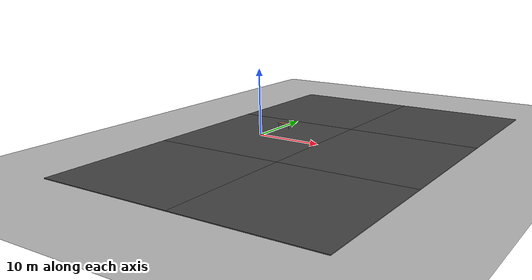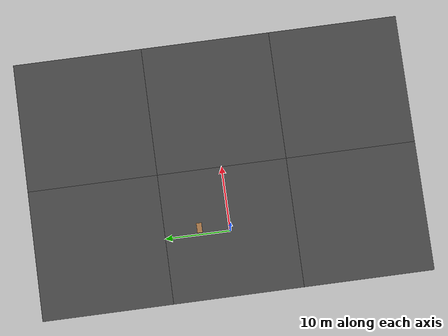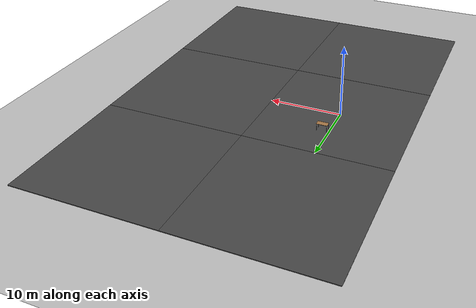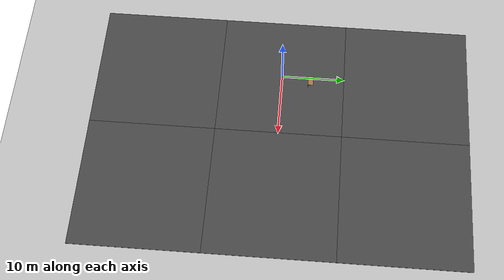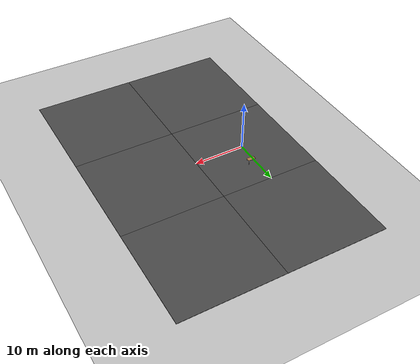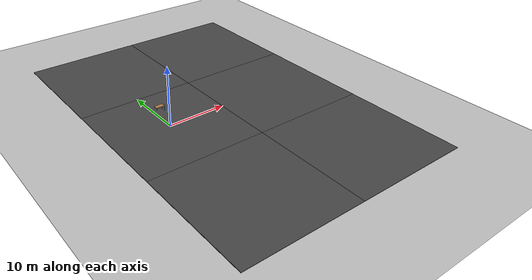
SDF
<sdf version="1.6">
 <world name="default">
  <plugin name="ros_interface_plugin" filename="librotors_gazebo_ros_interface_plugin.so"/>
  <light name="sun" type="directional">
   <pose>0 0 10 0 -0 0</pose>
   <diffuse>0.8 0.8 0.8 1</diffuse>
   <specular>0.1 0.1 0.1 1</specular>
   <attenuation>
    <range>1000</range>
    <constant>0.9</constant>
    <linear>0.01</linear>
    <quadratic>0.001</quadratic>
   </attenuation>
   <direction>-0.5 0.5 -1</direction>
  </light>
  <model name="ground_plane">
   <static>1</static>
   <link name="link">
    <collision name="collision">
     <geometry><plane><normal>0 0 1</normal><size>100 100</size></plane></geometry>
     <surface><friction><ode><mu>100</mu><mu2>50</mu2></ode></friction></surface>
    </collision>
    <visual name="visual">
     <cast_shadows>0</cast_shadows>
     <geometry><plane><normal>0 0 1</normal><size>100 100</size></plane></geometry>
     <material>
      <script><uri>file://media/materials/scripts/gazebo.material</uri><name>Gazebo/Grey</name></script>
     </material>
    </visual>
   </link>
  </model>
  <model name="asphalt_plane">
   <static>1</static>
   <link name="link">
    <collision name="collision"><geometry><box><size>20 20 0.1</size></box></geometry></collision>
    <visual name="visual">
     <cast_shadows>0</cast_shadows>
     <geometry><box><size>20 20 0.1</size></box></geometry>
     <material>
      <script>
       <uri>model://asphalt_plane/materials/scripts</uri>
       <uri>model://asphalt_plane/materials/textures</uri>
       <name>vrc/asphalt</name>
      </script>
     </material>
    </visual>
   </link>
  </model>
  <physics name="default_physics" default="0" type="ode">
   <ode>
    <solver>
     <type>quick</type>
     <iters>10</iters>
     <sor>1.3</sor>
     <use_dynamic_moi_rescaling>0</use_dynamic_moi_rescaling>
    </solver>
    <constraints>
     <cfm>0</cfm>
     <erp>0.2</erp>
     <contact_max_correcting_vel>100</contact_max_correcting_vel>
     <contact_surface_layer>0.001</contact_surface_layer>
    </constraints>
   </ode>
   <max_step_size>0.002</max_step_size>
   <real_time_factor>1</real_time_factor>
   <real_time_update_rate>500</real_time_update_rate>
  </physics>
  <gravity>0 0 0</gravity>
  <magnetic_field>6e-06 2.3e-05 -4.2e-05</magnetic_field>
  <atmosphere type="adiabatic"/>
  <scene><ambient>0.4 0.4 0.4 1</ambient><background>0.7 0.7 0.7 1</background><shadows>1</shadows></scene>
  <spherical_coordinates>
   <surface_model>EARTH_WGS84</surface_model>
   <latitude_deg>0</latitude_deg>
   <longitude_deg>0</longitude_deg>
   <elevation>0</elevation>
   <heading_deg>0</heading_deg>
  </spherical_coordinates>
  <model name="asphalt_plane_clone">
   <static>1</static>
   <link name="link">
    <collision name="collision"><geometry><box><size>20 20 0.1</size></box></geometry></collision>
    <visual name="visual">
     <cast_shadows>0</cast_shadows>
     <geometry><box><size>20 20 0.1</size></box></geometry>
     <material>
      <script>
       <uri>model://asphalt_plane/materials/scripts</uri>
       <uri>model://asphalt_plane/materials/textures</uri>
       <name>vrc/asphalt</name>
      </script>
     </material>
    </visual>
   </link>
   <pose>20 0 0 0 -0 0</pose>
  </model>
  <model name="asphalt_plane_clone_0">
   <static>1</static>
   <link name="link">
    <collision name="collision"><geometry><box><size>20 20 0.1</size></box></geometry></collision>
    <visual name="visual">
     <cast_shadows>0</cast_shadows>
     <geometry><box><size>20 20 0.1</size></box></geometry>
     <material>
      <script>
       <uri>model://asphalt_plane/materials/scripts</uri>
       <uri>model://asphalt_plane/materials/textures</uri>
       <name>vrc/asphalt</name>
      </script>
     </material>
    </visual>
   </link>
   <pose>0 20 0 0 -0 0</pose>
  </model>
  <model name="asphalt_plane_clone_1">
   <static>1</static>
   <link name="link">
    <collision name="collision"><geometry><box><size>20 20 0.1</size></box></geometry></collision>
    <visual name="visual">
     <cast_shadows>0</cast_shadows>
     <geometry><box><size>20 20 0.1</size></box></geometry>
     <material>
      <script>
       <uri>model://asphalt_plane/materials/scripts</uri>
       <uri>model://asphalt_plane/materials/textures</uri>
       <name>vrc/asphalt</name>
      </script>
     </material>
    </visual>
   </link>
   <pose>20 20 0 0 -0 0</pose>
  </model>
  <model name="asphalt_plane_clone_2">
   <static>1</static>
   <link name="link">
    <collision name="collision"><geometry><box><size>20 20 0.1</size></box></geometry></collision>
    <visual name="visual">
     <cast_shadows>0</cast_shadows>
     <geometry><box><size>20 20 0.1</size></box></geometry>
     <material>
      <script>
       <uri>model://asphalt_plane/materials/scripts</uri>
       <uri>model://asphalt_plane/materials/textures</uri>
       <name>vrc/asphalt</name>
      </script>
     </material>
    </visual>
   </link>
   <pose>0 -20 0 0 -0 0</pose>
  </model>
  <model name="asphalt_plane_clone_3">
   <static>1</static>
   <link name="link">
    <collision name="collision"><geometry><box><size>20 20 0.1</size></box></geometry></collision>
    <visual name="visual">
     <cast_shadows>0</cast_shadows>
     <geometry><box><size>20 20 0.1</size></box></geometry>
     <material>
      <script>
       <uri>model://asphalt_plane/materials/scripts</uri>
       <uri>model://asphalt_plane/materials/textures</uri>
       <name>vrc/asphalt</name>
      </script>
     </material>
    </visual>
   </link>
   <pose>20 -20 0 0 -0 0</pose>
  </model>
  <model name="table">
   <static>1</static>
   <link name="link">
    <collision name="surface">
     <pose>0 0 1 0 -0 0</pose>
     <geometry><box><size>1.5 0.8 0.03</size></box></geometry>
     <surface><friction><ode><mu>0.6</mu><mu2>0.6</mu2></ode></friction></surface>
    </collision>
    <visual name="visual1">
     <pose>0 0 1 0 -0 0</pose>
     <geometry><box><size>1.5 0.8 0.03</size></box></geometry>
     <material>
      <script><uri>file://media/materials/scripts/gazebo.material</uri><name>Gazebo/Wood</name></script>
     </material>
    </visual>
    <collision name="front_left_leg">
     <pose>0.68 0.38 0.5 0 -0 0</pose>
     <geometry><cylinder><radius>0.02</radius><length>1</length></cylinder></geometry>
    </collision>
    <visual name="front_left_leg">
     <pose>0.68 0.38 0.5 0 -0 0</pose>
     <geometry><cylinder><radius>0.02</radius><length>1</length></cylinder></geometry>
     <material>
      <script><uri>file://media/materials/scripts/gazebo.material</uri><name>Gazebo/Grey</name></script>
     </material>
    </visual>
    <collision name="front_right_leg">
     <pose>0.68 -0.38 0.5 0 -0 0</pose>
     <geometry><cylinder><radius>0.02</radius><length>1</length></cylinder></geometry>
    </collision>
    <visual name="front_right_leg">
     <pose>0.68 -0.38 0.5 0 -0 0</pose>
     <geometry><cylinder><radius>0.02</radius><length>1</length></cylinder></geometry>
     <material>
      <script><uri>file://media/materials/scripts/gazebo.material</uri><name>Gazebo/Grey</name></script>
     </material>
    </visual>
    <collision name="back_right_leg">
     <pose>-0.68 -0.38 0.5 0 -0 0</pose>
     <geometry><cylinder><radius>0.02</radius><length>1</length></cylinder></geometry>
    </collision>
    <visual name="back_right_leg">
     <pose>-0.68 -0.38 0.5 0 -0 0</pose>
     <geometry><cylinder><radius>0.02</radius><length>1</length></cylinder></geometry>
     <material>
      <script><uri>file://media/materials/scripts/gazebo.material</uri><name>Gazebo/Grey</name></script>
     </material>
    </visual>
    <collision name="back_left_leg">
     <pose>-0.68 0.38 0.5 0 -0 0</pose>
     <geometry><cylinder><radius>0.02</radius><length>1</length></cylinder></geometry>
    </collision>
    <visual name="back_left_leg">
     <pose>-0.68 0.38 0.5 0 -0 0</pose>
     <geometry><cylinder><radius>0.02</radius><length>1</length></cylinder></geometry>
     <material>
      <script><uri>file://media/materials/scripts/gazebo.material</uri><name>Gazebo/Grey</name></script>
     </material>
    </visual>
   </link>
   <pose>0.948708 4.62312 0 0 -0 0</pose>
  </model>
 </world>
</sdf>
